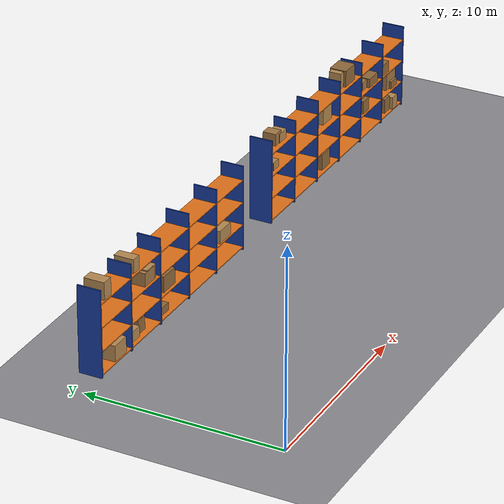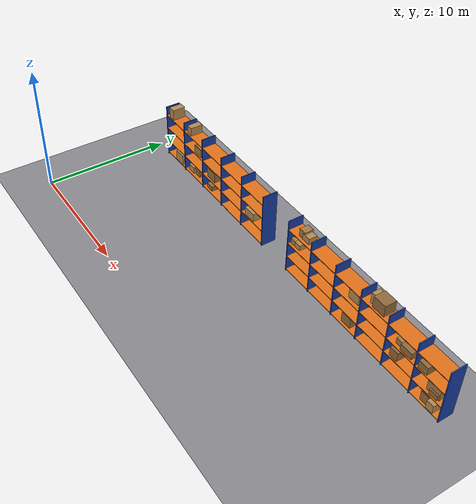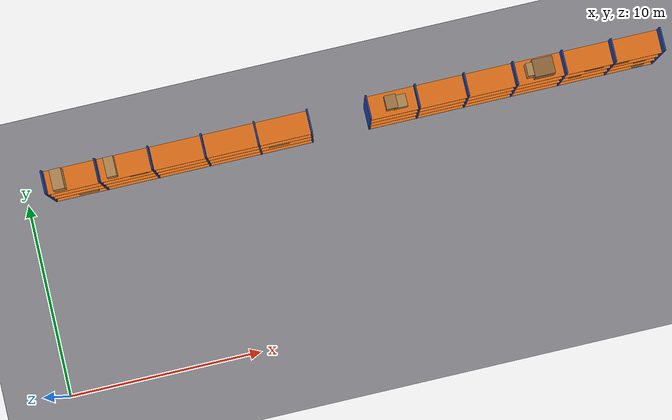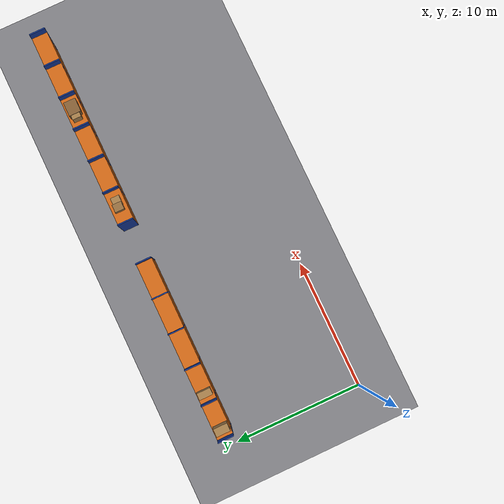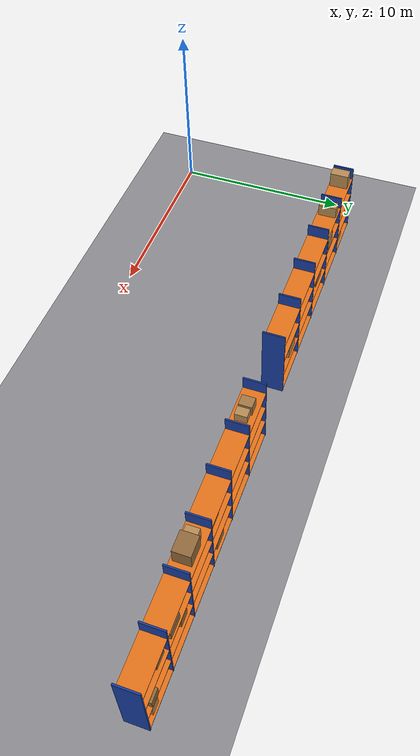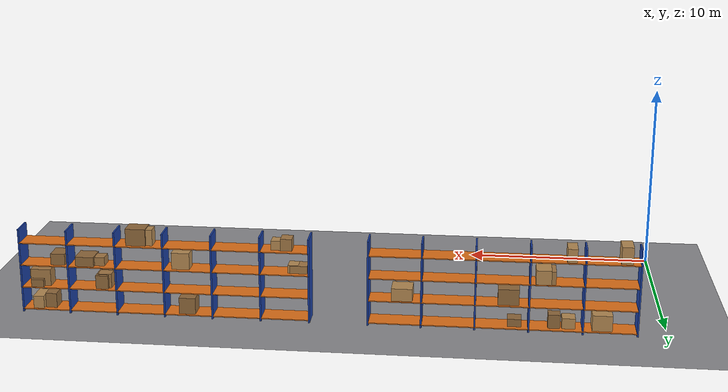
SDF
<sdf version="1.9">
 <world name="warehouse">
  <model name="ground_plane">
   <static>true</static>
   <link name="link">
    <collision name="collision">
     <geometry><plane><normal>0 0 1</normal><size>1 1</size></plane></geometry>
    </collision>
    <visual name="visual">
     <geometry><plane><normal>0 0 1</normal><size>200 100</size></plane></geometry>
     <material>
      <ambient>0.55 0.55 0.57 1</ambient>
      <diffuse>0.55 0.55 0.57 1</diffuse>
      <specular>0.1 0.1 0.1 1</specular>
     </material>
    </visual>
   </link>
  </model>
  <model name="rack26">
   <static>true</static>
   <link name="link">
    <collision name="up0_c">
     <pose>1.500 10.500 2.250 0 0 0</pose>
     <geometry><box><size>0.080 1.200 4.500</size></box></geometry>
    </collision>
    <visual name="up0_v">
     <pose>1.500 10.500 2.250 0 0 0</pose>
     <geometry><box><size>0.080 1.200 4.500</size></box></geometry>
     <material>
      <ambient>0.1 0.25 0.65 1</ambient>
      <diffuse>0.1 0.25 0.65 1</diffuse>
      <specular>0.1 0.1 0.1 1</specular>
     </material>
    </visual>
    <collision name="up1_c">
     <pose>4.200 10.500 2.250 0 0 0</pose>
     <geometry><box><size>0.080 1.200 4.500</size></box></geometry>
    </collision>
    <visual name="up1_v">
     <pose>4.200 10.500 2.250 0 0 0</pose>
     <geometry><box><size>0.080 1.200 4.500</size></box></geometry>
     <material>
      <ambient>0.1 0.25 0.65 1</ambient>
      <diffuse>0.1 0.25 0.65 1</diffuse>
      <specular>0.1 0.1 0.1 1</specular>
     </material>
    </visual>
    <collision name="up2_c">
     <pose>6.900 10.500 2.250 0 0 0</pose>
     <geometry><box><size>0.080 1.200 4.500</size></box></geometry>
    </collision>
    <visual name="up2_v">
     <pose>6.900 10.500 2.250 0 0 0</pose>
     <geometry><box><size>0.080 1.200 4.500</size></box></geometry>
     <material>
      <ambient>0.1 0.25 0.65 1</ambient>
      <diffuse>0.1 0.25 0.65 1</diffuse>
      <specular>0.1 0.1 0.1 1</specular>
     </material>
    </visual>
    <collision name="up3_c">
     <pose>9.600 10.500 2.250 0 0 0</pose>
     <geometry><box><size>0.080 1.200 4.500</size></box></geometry>
    </collision>
    <visual name="up3_v">
     <pose>9.600 10.500 2.250 0 0 0</pose>
     <geometry><box><size>0.080 1.200 4.500</size></box></geometry>
     <material>
      <ambient>0.1 0.25 0.65 1</ambient>
      <diffuse>0.1 0.25 0.65 1</diffuse>
      <specular>0.1 0.1 0.1 1</specular>
     </material>
    </visual>
    <collision name="up4_c">
     <pose>12.300 10.500 2.250 0 0 0</pose>
     <geometry><box><size>0.080 1.200 4.500</size></box></geometry>
    </collision>
    <visual name="up4_v">
     <pose>12.300 10.500 2.250 0 0 0</pose>
     <geometry><box><size>0.080 1.200 4.500</size></box></geometry>
     <material>
      <ambient>0.1 0.25 0.65 1</ambient>
      <diffuse>0.1 0.25 0.65 1</diffuse>
      <specular>0.1 0.1 0.1 1</specular>
     </material>
    </visual>
    <collision name="up5_c">
     <pose>15.000 10.500 2.250 0 0 0</pose>
     <geometry><box><size>0.080 1.200 4.500</size></box></geometry>
    </collision>
    <visual name="up5_v">
     <pose>15.000 10.500 2.250 0 0 0</pose>
     <geometry><box><size>0.080 1.200 4.500</size></box></geometry>
     <material>
      <ambient>0.1 0.25 0.65 1</ambient>
      <diffuse>0.1 0.25 0.65 1</diffuse>
      <specular>0.1 0.1 0.1 1</specular>
     </material>
    </visual>
    <collision name="sh0_c">
     <pose>8.250 10.500 0.150 0 0 0</pose>
     <geometry><box><size>13.500 1.200 0.050</size></box></geometry>
    </collision>
    <visual name="sh0_v">
     <pose>8.250 10.500 0.150 0 0 0</pose>
     <geometry><box><size>13.500 1.200 0.050</size></box></geometry>
     <material>
      <ambient>0.9 0.45 0.1 1</ambient>
      <diffuse>0.9 0.45 0.1 1</diffuse>
      <specular>0.1 0.1 0.1 1</specular>
     </material>
    </visual>
    <collision name="sh1_c">
     <pose>8.250 10.500 1.350 0 0 0</pose>
     <geometry><box><size>13.500 1.200 0.050</size></box></geometry>
    </collision>
    <visual name="sh1_v">
     <pose>8.250 10.500 1.350 0 0 0</pose>
     <geometry><box><size>13.500 1.200 0.050</size></box></geometry>
     <material>
      <ambient>0.9 0.45 0.1 1</ambient>
      <diffuse>0.9 0.45 0.1 1</diffuse>
      <specular>0.1 0.1 0.1 1</specular>
     </material>
    </visual>
    <collision name="sh2_c">
     <pose>8.250 10.500 2.550 0 0 0</pose>
     <geometry><box><size>13.500 1.200 0.050</size></box></geometry>
    </collision>
    <visual name="sh2_v">
     <pose>8.250 10.500 2.550 0 0 0</pose>
     <geometry><box><size>13.500 1.200 0.050</size></box></geometry>
     <material>
      <ambient>0.9 0.45 0.1 1</ambient>
      <diffuse>0.9 0.45 0.1 1</diffuse>
      <specular>0.1 0.1 0.1 1</specular>
     </material>
    </visual>
    <collision name="sh3_c">
     <pose>8.250 10.500 3.750 0 0 0</pose>
     <geometry><box><size>13.500 1.200 0.050</size></box></geometry>
    </collision>
    <visual name="sh3_v">
     <pose>8.250 10.500 3.750 0 0 0</pose>
     <geometry><box><size>13.500 1.200 0.050</size></box></geometry>
     <material>
      <ambient>0.9 0.45 0.1 1</ambient>
      <diffuse>0.9 0.45 0.1 1</diffuse>
      <specular>0.1 0.1 0.1 1</specular>
     </material>
    </visual>
    <collision name="c0_c">
     <pose>3.244 10.460 0.587 0 0 0</pose>
     <geometry><box><size>1.006 1.014 0.825</size></box></geometry>
    </collision>
    <visual name="c0_v">
     <pose>3.244 10.460 0.587 0 0 0</pose>
     <geometry><box><size>1.006 1.014 0.825</size></box></geometry>
     <material>
      <ambient>0.72 0.55 0.33 1</ambient>
      <diffuse>0.72 0.55 0.33 1</diffuse>
      <specular>0.1 0.1 0.1 1</specular>
     </material>
    </visual>
    <collision name="c1_c">
     <pose>2.214 10.478 4.222 0 0 0</pose>
     <geometry><box><size>0.587 1.046 0.894</size></box></geometry>
    </collision>
    <visual name="c1_v">
     <pose>2.214 10.478 4.222 0 0 0</pose>
     <geometry><box><size>0.587 1.046 0.894</size></box></geometry>
     <material>
      <ambient>0.72 0.55 0.33 1</ambient>
      <diffuse>0.72 0.55 0.33 1</diffuse>
      <specular>0.1 0.1 0.1 1</specular>
     </material>
    </visual>
    <collision name="c2_c">
     <pose>5.633 10.541 0.537 0 0 0</pose>
     <geometry><box><size>0.612 0.622 0.724</size></box></geometry>
    </collision>
    <visual name="c2_v">
     <pose>5.633 10.541 0.537 0 0 0</pose>
     <geometry><box><size>0.612 0.622 0.724</size></box></geometry>
     <material>
      <ambient>0.58 0.42 0.24 1</ambient>
      <diffuse>0.58 0.42 0.24 1</diffuse>
      <specular>0.1 0.1 0.1 1</specular>
     </material>
    </visual>
    <collision name="c3_c">
     <pose>4.907 10.470 0.451 0 0 0</pose>
     <geometry><box><size>0.669 0.723 0.552</size></box></geometry>
    </collision>
    <visual name="c3_v">
     <pose>4.907 10.470 0.451 0 0 0</pose>
     <geometry><box><size>0.669 0.723 0.552</size></box></geometry>
     <material>
      <ambient>0.72 0.55 0.33 1</ambient>
      <diffuse>0.72 0.55 0.33 1</diffuse>
      <specular>0.1 0.1 0.1 1</specular>
     </material>
    </visual>
    <collision name="c4_c">
     <pose>6.068 10.525 2.921 0 0 0</pose>
     <geometry><box><size>0.876 1.038 0.693</size></box></geometry>
    </collision>
    <visual name="c4_v">
     <pose>6.068 10.525 2.921 0 0 0</pose>
     <geometry><box><size>0.876 1.038 0.693</size></box></geometry>
     <material>
      <ambient>0.65 0.48 0.28 1</ambient>
      <diffuse>0.65 0.48 0.28 1</diffuse>
      <specular>0.1 0.1 0.1 1</specular>
     </material>
    </visual>
    <collision name="c5_c">
     <pose>6.237 10.545 2.945 0 0 0</pose>
     <geometry><box><size>0.773 1.067 0.740</size></box></geometry>
    </collision>
    <visual name="c5_v">
     <pose>6.237 10.545 2.945 0 0 0</pose>
     <geometry><box><size>0.773 1.067 0.740</size></box></geometry>
     <material>
      <ambient>0.72 0.55 0.33 1</ambient>
      <diffuse>0.72 0.55 0.33 1</diffuse>
      <specular>0.1 0.1 0.1 1</specular>
     </material>
    </visual>
    <collision name="c6_c">
     <pose>4.879 10.512 4.129 0 0 0</pose>
     <geometry><box><size>0.502 1.016 0.709</size></box></geometry>
    </collision>
    <visual name="c6_v">
     <pose>4.879 10.512 4.129 0 0 0</pose>
     <geometry><box><size>0.502 1.016 0.709</size></box></geometry>
     <material>
      <ambient>0.72 0.55 0.33 1</ambient>
      <diffuse>0.72 0.55 0.33 1</diffuse>
      <specular>0.1 0.1 0.1 1</specular>
     </material>
    </visual>
    <collision name="c7_c">
     <pose>7.609 10.476 0.376 0 0 0</pose>
     <geometry><box><size>0.702 0.725 0.402</size></box></geometry>
    </collision>
    <visual name="c7_v">
     <pose>7.609 10.476 0.376 0 0 0</pose>
     <geometry><box><size>0.702 0.725 0.402</size></box></geometry>
     <material>
      <ambient>0.58 0.42 0.24 1</ambient>
      <diffuse>0.58 0.42 0.24 1</diffuse>
      <specular>0.1 0.1 0.1 1</specular>
     </material>
    </visual>
    <collision name="c8_c">
     <pose>7.939 10.502 1.789 0 0 0</pose>
     <geometry><box><size>1.058 0.924 0.829</size></box></geometry>
    </collision>
    <visual name="c8_v">
     <pose>7.939 10.502 1.789 0 0 0</pose>
     <geometry><box><size>1.058 0.924 0.829</size></box></geometry>
     <material>
      <ambient>0.58 0.42 0.24 1</ambient>
      <diffuse>0.58 0.42 0.24 1</diffuse>
      <specular>0.1 0.1 0.1 1</specular>
     </material>
    </visual>
    <collision name="c9_c">
     <pose>13.231 10.463 1.664 0 0 0</pose>
     <geometry><box><size>0.531 0.909 0.579</size></box></geometry>
    </collision>
    <visual name="c9_v">
     <pose>13.231 10.463 1.664 0 0 0</pose>
     <geometry><box><size>0.531 0.909 0.579</size></box></geometry>
     <material>
      <ambient>0.58 0.42 0.24 1</ambient>
      <diffuse>0.58 0.42 0.24 1</diffuse>
      <specular>0.1 0.1 0.1 1</specular>
     </material>
    </visual>
    <collision name="c10_c">
     <pose>13.282 10.495 1.705 0 0 0</pose>
     <geometry><box><size>1.067 1.049 0.661</size></box></geometry>
    </collision>
    <visual name="c10_v">
     <pose>13.282 10.495 1.705 0 0 0</pose>
     <geometry><box><size>1.067 1.049 0.661</size></box></geometry>
     <material>
      <ambient>0.72 0.55 0.33 1</ambient>
      <diffuse>0.72 0.55 0.33 1</diffuse>
      <specular>0.1 0.1 0.1 1</specular>
     </material>
    </visual>
   </link>
  </model>
  <model name="rack27">
   <static>true</static>
   <link name="link">
    <collision name="up0_c">
     <pose>18.000 10.500 2.250 0 0 0</pose>
     <geometry><box><size>0.080 1.200 4.500</size></box></geometry>
    </collision>
    <visual name="up0_v">
     <pose>18.000 10.500 2.250 0 0 0</pose>
     <geometry><box><size>0.080 1.200 4.500</size></box></geometry>
     <material>
      <ambient>0.1 0.25 0.65 1</ambient>
      <diffuse>0.1 0.25 0.65 1</diffuse>
      <specular>0.1 0.1 0.1 1</specular>
     </material>
    </visual>
    <collision name="up1_c">
     <pose>20.500 10.500 2.250 0 0 0</pose>
     <geometry><box><size>0.080 1.200 4.500</size></box></geometry>
    </collision>
    <visual name="up1_v">
     <pose>20.500 10.500 2.250 0 0 0</pose>
     <geometry><box><size>0.080 1.200 4.500</size></box></geometry>
     <material>
      <ambient>0.1 0.25 0.65 1</ambient>
      <diffuse>0.1 0.25 0.65 1</diffuse>
      <specular>0.1 0.1 0.1 1</specular>
     </material>
    </visual>
    <collision name="up2_c">
     <pose>23.000 10.500 2.250 0 0 0</pose>
     <geometry><box><size>0.080 1.200 4.500</size></box></geometry>
    </collision>
    <visual name="up2_v">
     <pose>23.000 10.500 2.250 0 0 0</pose>
     <geometry><box><size>0.080 1.200 4.500</size></box></geometry>
     <material>
      <ambient>0.1 0.25 0.65 1</ambient>
      <diffuse>0.1 0.25 0.65 1</diffuse>
      <specular>0.1 0.1 0.1 1</specular>
     </material>
    </visual>
    <collision name="up3_c">
     <pose>25.500 10.500 2.250 0 0 0</pose>
     <geometry><box><size>0.080 1.200 4.500</size></box></geometry>
    </collision>
    <visual name="up3_v">
     <pose>25.500 10.500 2.250 0 0 0</pose>
     <geometry><box><size>0.080 1.200 4.500</size></box></geometry>
     <material>
      <ambient>0.1 0.25 0.65 1</ambient>
      <diffuse>0.1 0.25 0.65 1</diffuse>
      <specular>0.1 0.1 0.1 1</specular>
     </material>
    </visual>
    <collision name="up4_c">
     <pose>28.000 10.500 2.250 0 0 0</pose>
     <geometry><box><size>0.080 1.200 4.500</size></box></geometry>
    </collision>
    <visual name="up4_v">
     <pose>28.000 10.500 2.250 0 0 0</pose>
     <geometry><box><size>0.080 1.200 4.500</size></box></geometry>
     <material>
      <ambient>0.1 0.25 0.65 1</ambient>
      <diffuse>0.1 0.25 0.65 1</diffuse>
      <specular>0.1 0.1 0.1 1</specular>
     </material>
    </visual>
    <collision name="up5_c">
     <pose>30.500 10.500 2.250 0 0 0</pose>
     <geometry><box><size>0.080 1.200 4.500</size></box></geometry>
    </collision>
    <visual name="up5_v">
     <pose>30.500 10.500 2.250 0 0 0</pose>
     <geometry><box><size>0.080 1.200 4.500</size></box></geometry>
     <material>
      <ambient>0.1 0.25 0.65 1</ambient>
      <diffuse>0.1 0.25 0.65 1</diffuse>
      <specular>0.1 0.1 0.1 1</specular>
     </material>
    </visual>
    <collision name="up6_c">
     <pose>33.000 10.500 2.250 0 0 0</pose>
     <geometry><box><size>0.080 1.200 4.500</size></box></geometry>
    </collision>
    <visual name="up6_v">
     <pose>33.000 10.500 2.250 0 0 0</pose>
     <geometry><box><size>0.080 1.200 4.500</size></box></geometry>
     <material>
      <ambient>0.1 0.25 0.65 1</ambient>
      <diffuse>0.1 0.25 0.65 1</diffuse>
      <specular>0.1 0.1 0.1 1</specular>
     </material>
    </visual>
    <collision name="sh0_c">
     <pose>25.500 10.500 0.150 0 0 0</pose>
     <geometry><box><size>15.000 1.200 0.050</size></box></geometry>
    </collision>
    <visual name="sh0_v">
     <pose>25.500 10.500 0.150 0 0 0</pose>
     <geometry><box><size>15.000 1.200 0.050</size></box></geometry>
     <material>
      <ambient>0.9 0.45 0.1 1</ambient>
      <diffuse>0.9 0.45 0.1 1</diffuse>
      <specular>0.1 0.1 0.1 1</specular>
     </material>
    </visual>
    <collision name="sh1_c">
     <pose>25.500 10.500 1.350 0 0 0</pose>
     <geometry><box><size>15.000 1.200 0.050</size></box></geometry>
    </collision>
    <visual name="sh1_v">
     <pose>25.500 10.500 1.350 0 0 0</pose>
     <geometry><box><size>15.000 1.200 0.050</size></box></geometry>
     <material>
      <ambient>0.9 0.45 0.1 1</ambient>
      <diffuse>0.9 0.45 0.1 1</diffuse>
      <specular>0.1 0.1 0.1 1</specular>
     </material>
    </visual>
    <collision name="sh2_c">
     <pose>25.500 10.500 2.550 0 0 0</pose>
     <geometry><box><size>15.000 1.200 0.050</size></box></geometry>
    </collision>
    <visual name="sh2_v">
     <pose>25.500 10.500 2.550 0 0 0</pose>
     <geometry><box><size>15.000 1.200 0.050</size></box></geometry>
     <material>
      <ambient>0.9 0.45 0.1 1</ambient>
      <diffuse>0.9 0.45 0.1 1</diffuse>
      <specular>0.1 0.1 0.1 1</specular>
     </material>
    </visual>
    <collision name="sh3_c">
     <pose>25.500 10.500 3.750 0 0 0</pose>
     <geometry><box><size>15.000 1.200 0.050</size></box></geometry>
    </collision>
    <visual name="sh3_v">
     <pose>25.500 10.500 3.750 0 0 0</pose>
     <geometry><box><size>15.000 1.200 0.050</size></box></geometry>
     <material>
      <ambient>0.9 0.45 0.1 1</ambient>
      <diffuse>0.9 0.45 0.1 1</diffuse>
      <specular>0.1 0.1 0.1 1</specular>
     </material>
    </visual>
    <collision name="c0_c">
     <pose>18.548 10.487 2.780 0 0 0</pose>
     <geometry><box><size>0.884 0.733 0.409</size></box></geometry>
    </collision>
    <visual name="c0_v">
     <pose>18.548 10.487 2.780 0 0 0</pose>
     <geometry><box><size>0.884 0.733 0.409</size></box></geometry>
     <material>
      <ambient>0.65 0.48 0.28 1</ambient>
      <diffuse>0.65 0.48 0.28 1</diffuse>
      <specular>0.1 0.1 0.1 1</specular>
     </material>
    </visual>
    <collision name="c1_c">
     <pose>18.829 10.453 2.784 0 0 0</pose>
     <geometry><box><size>0.534 0.680 0.417</size></box></geometry>
    </collision>
    <visual name="c1_v">
     <pose>18.829 10.453 2.784 0 0 0</pose>
     <geometry><box><size>0.534 0.680 0.417</size></box></geometry>
     <material>
      <ambient>0.72 0.55 0.33 1</ambient>
      <diffuse>0.72 0.55 0.33 1</diffuse>
      <specular>0.1 0.1 0.1 1</specular>
     </material>
    </visual>
    <collision name="c2_c">
     <pose>19.599 10.459 4.019 0 0 0</pose>
     <geometry><box><size>0.703 0.645 0.488</size></box></geometry>
    </collision>
    <visual name="c2_v">
     <pose>19.599 10.459 4.019 0 0 0</pose>
     <geometry><box><size>0.703 0.645 0.488</size></box></geometry>
     <material>
      <ambient>0.72 0.55 0.33 1</ambient>
      <diffuse>0.72 0.55 0.33 1</diffuse>
      <specular>0.1 0.1 0.1 1</specular>
     </material>
    </visual>
    <collision name="c3_c">
     <pose>19.161 10.511 4.090 0 0 0</pose>
     <geometry><box><size>0.587 0.697 0.631</size></box></geometry>
    </collision>
    <visual name="c3_v">
     <pose>19.161 10.511 4.090 0 0 0</pose>
     <geometry><box><size>0.587 0.697 0.631</size></box></geometry>
     <material>
      <ambient>0.65 0.48 0.28 1</ambient>
      <diffuse>0.65 0.48 0.28 1</diffuse>
      <specular>0.1 0.1 0.1 1</specular>
     </material>
    </visual>
    <collision name="c4_c">
     <pose>24.332 10.527 0.606 0 0 0</pose>
     <geometry><box><size>0.852 0.899 0.862</size></box></geometry>
    </collision>
    <visual name="c4_v">
     <pose>24.332 10.527 0.606 0 0 0</pose>
     <geometry><box><size>0.852 0.899 0.862</size></box></geometry>
     <material>
      <ambient>0.58 0.42 0.24 1</ambient>
      <diffuse>0.58 0.42 0.24 1</diffuse>
      <specular>0.1 0.1 0.1 1</specular>
     </material>
    </visual>
    <collision name="c5_c">
     <pose>24.627 10.534 3.011 0 0 0</pose>
     <geometry><box><size>0.929 0.706 0.873</size></box></geometry>
    </collision>
    <visual name="c5_v">
     <pose>24.627 10.534 3.011 0 0 0</pose>
     <geometry><box><size>0.929 0.706 0.873</size></box></geometry>
     <material>
      <ambient>0.72 0.55 0.33 1</ambient>
      <diffuse>0.72 0.55 0.33 1</diffuse>
      <specular>0.1 0.1 0.1 1</specular>
     </material>
    </visual>
    <collision name="c6_c">
     <pose>26.570 10.498 4.198 0 0 0</pose>
     <geometry><box><size>1.015 0.659 0.845</size></box></geometry>
    </collision>
    <visual name="c6_v">
     <pose>26.570 10.498 4.198 0 0 0</pose>
     <geometry><box><size>1.015 0.659 0.845</size></box></geometry>
     <material>
      <ambient>0.72 0.55 0.33 1</ambient>
      <diffuse>0.72 0.55 0.33 1</diffuse>
      <specular>0.1 0.1 0.1 1</specular>
     </material>
    </visual>
    <collision name="c7_c">
     <pose>26.911 10.483 4.219 0 0 0</pose>
     <geometry><box><size>1.032 0.893 0.889</size></box></geometry>
    </collision>
    <visual name="c7_v">
     <pose>26.911 10.483 4.219 0 0 0</pose>
     <geometry><box><size>1.032 0.893 0.889</size></box></geometry>
     <material>
      <ambient>0.58 0.42 0.24 1</ambient>
      <diffuse>0.58 0.42 0.24 1</diffuse>
      <specular>0.1 0.1 0.1 1</specular>
     </material>
    </visual>
    <collision name="c8_c">
     <pose>28.765 10.487 1.733 0 0 0</pose>
     <geometry><box><size>0.659 1.004 0.716</size></box></geometry>
    </collision>
    <visual name="c8_v">
     <pose>28.765 10.487 1.733 0 0 0</pose>
     <geometry><box><size>0.659 1.004 0.716</size></box></geometry>
     <material>
      <ambient>0.58 0.42 0.24 1</ambient>
      <diffuse>0.58 0.42 0.24 1</diffuse>
      <specular>0.1 0.1 0.1 1</specular>
     </material>
    </visual>
    <collision name="c9_c">
     <pose>28.663 10.500 1.752 0 0 0</pose>
     <geometry><box><size>0.695 0.622 0.755</size></box></geometry>
    </collision>
    <visual name="c9_v">
     <pose>28.663 10.500 1.752 0 0 0</pose>
     <geometry><box><size>0.695 0.622 0.755</size></box></geometry>
     <material>
      <ambient>0.65 0.48 0.28 1</ambient>
      <diffuse>0.65 0.48 0.28 1</diffuse>
      <specular>0.1 0.1 0.1 1</specular>
     </material>
    </visual>
    <collision name="c10_c">
     <pose>28.950 10.484 2.805 0 0 0</pose>
     <geometry><box><size>0.654 0.678 0.459</size></box></geometry>
    </collision>
    <visual name="c10_v">
     <pose>28.950 10.484 2.805 0 0 0</pose>
     <geometry><box><size>0.654 0.678 0.459</size></box></geometry>
     <material>
      <ambient>0.65 0.48 0.28 1</ambient>
      <diffuse>0.65 0.48 0.28 1</diffuse>
      <specular>0.1 0.1 0.1 1</specular>
     </material>
    </visual>
    <collision name="c11_c">
     <pose>29.626 10.501 2.828 0 0 0</pose>
     <geometry><box><size>0.955 1.027 0.505</size></box></geometry>
    </collision>
    <visual name="c11_v">
     <pose>29.626 10.501 2.828 0 0 0</pose>
     <geometry><box><size>0.955 1.027 0.505</size></box></geometry>
     <material>
      <ambient>0.58 0.42 0.24 1</ambient>
      <diffuse>0.58 0.42 0.24 1</diffuse>
      <specular>0.1 0.1 0.1 1</specular>
     </material>
    </visual>
    <collision name="c12_c">
     <pose>31.572 10.465 0.565 0 0 0</pose>
     <geometry><box><size>0.584 0.773 0.780</size></box></geometry>
    </collision>
    <visual name="c12_v">
     <pose>31.572 10.465 0.565 0 0 0</pose>
     <geometry><box><size>0.584 0.773 0.780</size></box></geometry>
     <material>
      <ambient>0.58 0.42 0.24 1</ambient>
      <diffuse>0.58 0.42 0.24 1</diffuse>
      <specular>0.1 0.1 0.1 1</specular>
     </material>
    </visual>
    <collision name="c13_c">
     <pose>32.194 10.470 0.506 0 0 0</pose>
     <geometry><box><size>0.556 1.083 0.662</size></box></geometry>
    </collision>
    <visual name="c13_v">
     <pose>32.194 10.470 0.506 0 0 0</pose>
     <geometry><box><size>0.556 1.083 0.662</size></box></geometry>
     <material>
      <ambient>0.72 0.55 0.33 1</ambient>
      <diffuse>0.72 0.55 0.33 1</diffuse>
      <specular>0.1 0.1 0.1 1</specular>
     </material>
    </visual>
    <collision name="c14_c">
     <pose>32.169 10.534 1.577 0 0 0</pose>
     <geometry><box><size>0.652 1.085 0.404</size></box></geometry>
    </collision>
    <visual name="c14_v">
     <pose>32.169 10.534 1.577 0 0 0</pose>
     <geometry><box><size>0.652 1.085 0.404</size></box></geometry>
     <material>
      <ambient>0.58 0.42 0.24 1</ambient>
      <diffuse>0.58 0.42 0.24 1</diffuse>
      <specular>0.1 0.1 0.1 1</specular>
     </material>
    </visual>
    <collision name="c15_c">
     <pose>32.050 10.489 1.819 0 0 0</pose>
     <geometry><box><size>1.053 0.730 0.887</size></box></geometry>
    </collision>
    <visual name="c15_v">
     <pose>32.050 10.489 1.819 0 0 0</pose>
     <geometry><box><size>1.053 0.730 0.887</size></box></geometry>
     <material>
      <ambient>0.65 0.48 0.28 1</ambient>
      <diffuse>0.65 0.48 0.28 1</diffuse>
      <specular>0.1 0.1 0.1 1</specular>
     </material>
    </visual>
    <collision name="c16_c">
     <pose>31.056 10.458 2.876 0 0 0</pose>
     <geometry><box><size>0.744 0.953 0.602</size></box></geometry>
    </collision>
    <visual name="c16_v">
     <pose>31.056 10.458 2.876 0 0 0</pose>
     <geometry><box><size>0.744 0.953 0.602</size></box></geometry>
     <material>
      <ambient>0.58 0.42 0.24 1</ambient>
      <diffuse>0.58 0.42 0.24 1</diffuse>
      <specular>0.1 0.1 0.1 1</specular>
     </material>
    </visual>
   </link>
  </model>
 </world>
</sdf>
